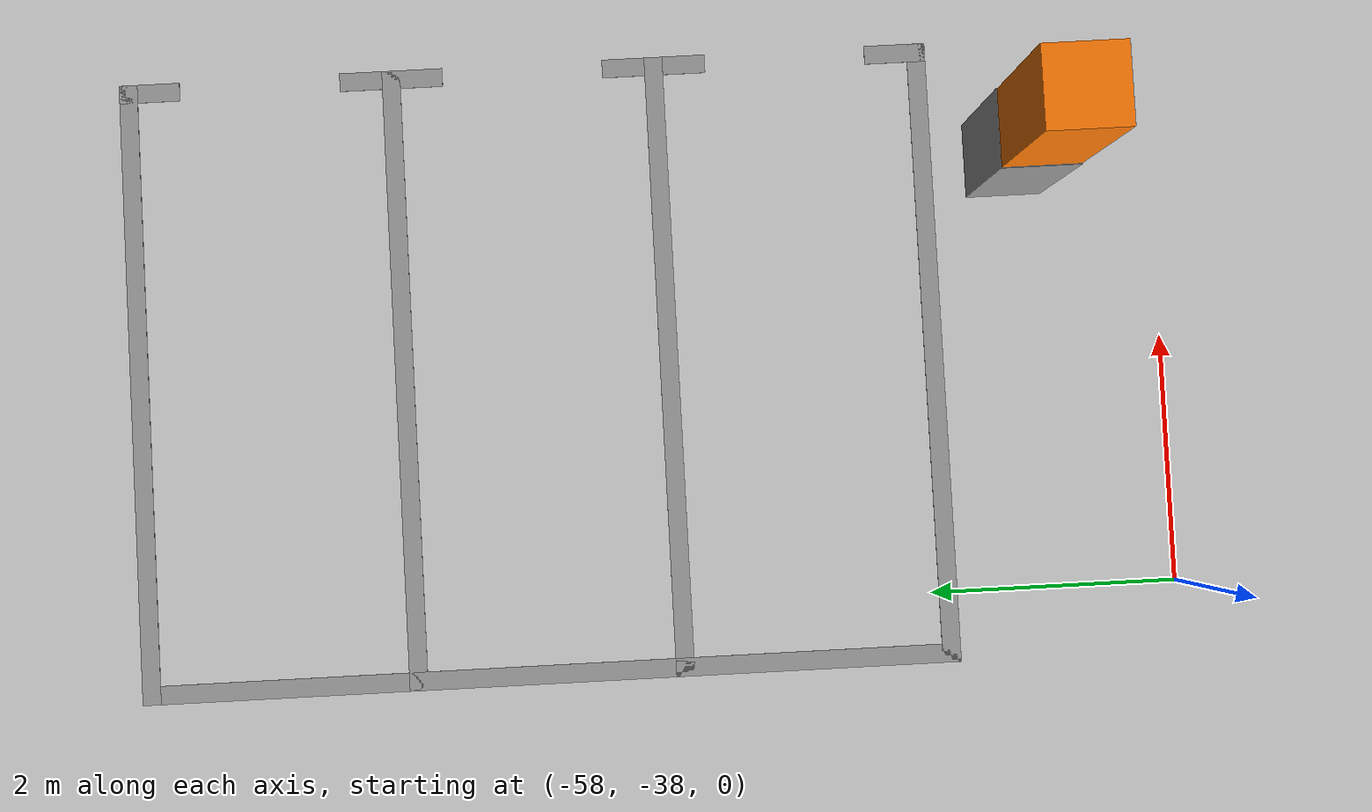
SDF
<sdf version="1.7">
 <world name="default">
  <model name="ground_plane">
   <static>1</static>
   <link name="link">
    <collision name="collision">
     <geometry><plane><normal>0 0 1</normal><size>100 100</size></plane></geometry>
     <surface><friction><ode><mu>100</mu><mu2>50</mu2></ode></friction></surface>
    </collision>
    <visual name="visual">
     <cast_shadows>0</cast_shadows>
     <geometry><plane><normal>0 0 1</normal><size>100 100</size></plane></geometry>
     <material>
      <script><uri>file://media/materials/scripts/gazebo.material</uri><name>Gazebo/Grey</name></script>
     </material>
    </visual>
   </link>
  </model>
  <model name="carport1_3_clone_clone_9_clone_0_clone_2">
   <pose>-57.7606 -33.3171 0 0 -0 1.57184</pose>
   <link name="Wall_105">
    <collision name="Wall_105_Collision">
     <geometry><box><size>0.61 0.6 1.5</size></box></geometry>
     <pose>0 0 0.75 0 -0 0</pose>
    </collision>
    <visual name="Wall_105_Visual">
     <pose>0 0 0.75 0 -0 0</pose>
     <geometry><box><size>0.61 0.6 1.5</size></box></geometry>
     <material>
      <script><uri>file://media/materials/scripts/gazebo.material</uri><name>Gazebo/Grey</name></script>
      <ambient>1 1 1 1</ambient>
     </material>
     <meta><layer>0</layer></meta>
    </visual>
    <pose>-3.47407 -3.2865 0 0 -0 0</pose>
   </link>
   <link name="Wall_116">
    <collision name="Wall_116_Collision">
     <geometry><box><size>5.1 0.15 0.005</size></box></geometry>
     <pose>0 0 0.0025 0 -0 0</pose>
    </collision>
    <visual name="Wall_116_Visual">
     <pose>0 0 0.0025 0 -0 0</pose>
     <geometry><box><size>5.1 0.15 0.005</size></box></geometry>
     <material>
      <script><uri>file://media/materials/scripts/gazebo.material</uri><name>Gazebo/Grey</name></script>
      <ambient>1 1 1 1</ambient>
     </material>
     <meta><layer>0</layer></meta>
    </visual>
    <pose>-2.82307 -1.7385 0 0 -0 1.5708</pose>
   </link>
   <link name="Wall_124">
    <collision name="Wall_124_Collision">
     <geometry><box><size>5.1 0.15 0.005</size></box></geometry>
     <pose>0 0 0.0025 0 -0 0</pose>
    </collision>
    <visual name="Wall_124_Visual">
     <pose>0 0 0.0025 0 -0 0</pose>
     <geometry><box><size>5.1 0.15 0.005</size></box></geometry>
     <material>
      <script><uri>file://media/materials/scripts/gazebo.material</uri><name>Gazebo/Grey</name></script>
      <ambient>1 1 1 1</ambient>
     </material>
     <meta><layer>0</layer></meta>
    </visual>
    <pose>3.70393 -1.7305 0 0 -0 1.5708</pose>
   </link>
   <link name="Wall_146">
    <collision name="Wall_146_Collision">
     <geometry><box><size>6.67711 0.15 0.005</size></box></geometry>
     <pose>0 0 0.0025 0 -0 0</pose>
    </collision>
    <visual name="Wall_146_Visual">
     <pose>0 0 0.0025 0 -0 0</pose>
     <geometry><box><size>6.67711 0.15 0.005</size></box></geometry>
     <material>
      <script><uri>file://media/materials/scripts/gazebo.material</uri><name>Gazebo/Grey</name></script>
      <ambient>1 1 1 1</ambient>
     </material>
     <meta><layer>0</layer></meta>
    </visual>
    <pose>0.440428 0.7405 0 0 -0 0.001226</pose>
   </link>
   <link name="Wall_168">
    <collision name="Wall_168_Collision">
     <geometry><box><size>5.1 0.15 0.005</size></box></geometry>
     <pose>0 0 0.0025 0 -0 0</pose>
    </collision>
    <visual name="Wall_168_Visual">
     <pose>0 0 0.0025 0 -0 0</pose>
     <geometry><box><size>5.1 0.15 0.005</size></box></geometry>
     <material>
      <script><uri>file://media/materials/scripts/gazebo.material</uri><name>Gazebo/Grey</name></script>
      <ambient>1 1 1 1</ambient>
     </material>
     <meta><layer>0</layer></meta>
    </visual>
    <pose>-0.64827 -1.73839 0 0 -0 1.57088</pose>
   </link>
   <link name="Wall_173">
    <collision name="Wall_173_Collision">
     <geometry><box><size>5.1 0.15 0.005</size></box></geometry>
     <pose>0 0 0.0025 0 -0 0</pose>
    </collision>
    <visual name="Wall_173_Visual">
     <pose>0 0 0.0025 0 -0 0</pose>
     <geometry><box><size>5.1 0.15 0.005</size></box></geometry>
     <material>
      <script><uri>file://media/materials/scripts/gazebo.material</uri><name>Gazebo/Grey</name></script>
      <ambient>1 1 1 1</ambient>
     </material>
     <meta><layer>0</layer></meta>
    </visual>
    <pose>1.52673 -1.73839 0 0 -0 1.57088</pose>
   </link>
   <link name="Wall_177">
    <collision name="Wall_177_Collision">
     <geometry><box><size>0.6 0.59 3</size></box></geometry>
     <pose>0 0 1.5 0 -0 0</pose>
    </collision>
    <visual name="Wall_177_Visual">
     <pose>0 0 1.5 0 -0 0</pose>
     <geometry><box><size>0.6 0.59 3</size></box></geometry>
     <material>
      <script><uri>file://media/materials/scripts/gazebo.material</uri><name>Gazebo/Grey</name></script>
      <ambient>0.996078 0.47451 0.0196078 1</ambient>
     </material>
     <meta><layer>0</layer></meta>
    </visual>
    <pose>-3.47407 -3.2865 0 0 -0 0</pose>
   </link>
   <link name="Wall_179">
    <collision name="Wall_179_Collision">
     <geometry><box><size>0.5 0.15 0.005</size></box></geometry>
     <pose>0 0 0.0025 0 -0 0</pose>
    </collision>
    <visual name="Wall_179_Visual">
     <pose>0 0 0.0025 0 -0 0</pose>
     <geometry><box><size>0.5 0.15 0.005</size></box></geometry>
     <material>
      <script><uri>file://media/materials/scripts/gazebo.material</uri><name>Gazebo/Grey</name></script>
      <ambient>1 1 1 1</ambient>
     </material>
     <meta><layer>0</layer></meta>
    </visual>
    <pose>-2.64807 -4.2135 0 0 -0 0</pose>
   </link>
   <link name="Wall_181">
    <collision name="Wall_181_Collision">
     <geometry><box><size>0.5 0.15 0.005</size></box></geometry>
     <pose>0 0 0.0025 0 -0 0</pose>
    </collision>
    <visual name="Wall_181_Visual">
     <pose>0 0 0.0025 0 -0 0</pose>
     <geometry><box><size>0.5 0.15 0.005</size></box></geometry>
     <material>
      <script><uri>file://media/materials/scripts/gazebo.material</uri><name>Gazebo/Grey</name></script>
      <ambient>1 1 1 1</ambient>
     </material>
     <meta><layer>0</layer></meta>
    </visual>
    <pose>-0.823072 -4.2135 0 0 -0 3.14159</pose>
   </link>
   <link name="Wall_183">
    <collision name="Wall_183_Collision">
     <geometry><box><size>0.5 0.15 0.005</size></box></geometry>
     <pose>0 0 0.0025 0 -0 0</pose>
    </collision>
    <visual name="Wall_183_Visual">
     <pose>0 0 0.0025 0 -0 0</pose>
     <geometry><box><size>0.5 0.15 0.005</size></box></geometry>
     <material>
      <script><uri>file://media/materials/scripts/gazebo.material</uri><name>Gazebo/Grey</name></script>
      <ambient>1 1 1 1</ambient>
     </material>
     <meta><layer>0</layer></meta>
    </visual>
    <pose>-0.473072 -4.2135 0 0 -0 0</pose>
   </link>
   <link name="Wall_185">
    <collision name="Wall_185_Collision">
     <geometry><box><size>0.5 0.15 0.005</size></box></geometry>
     <pose>0 0 0.0025 0 -0 0</pose>
    </collision>
    <visual name="Wall_185_Visual">
     <pose>0 0 0.0025 0 -0 0</pose>
     <geometry><box><size>0.5 0.15 0.005</size></box></geometry>
     <material>
      <script><uri>file://media/materials/scripts/gazebo.material</uri><name>Gazebo/Grey</name></script>
      <ambient>1 1 1 1</ambient>
     </material>
     <meta><layer>0</layer></meta>
    </visual>
    <pose>1.35193 -4.2135 0 0 -0 3.14159</pose>
   </link>
   <link name="Wall_187">
    <collision name="Wall_187_Collision">
     <geometry><box><size>0.5 0.15 0.005</size></box></geometry>
     <pose>0 0 0.0025 0 -0 0</pose>
    </collision>
    <visual name="Wall_187_Visual">
     <pose>0 0 0.0025 0 -0 0</pose>
     <geometry><box><size>0.5 0.15 0.005</size></box></geometry>
     <material>
      <script><uri>file://media/materials/scripts/gazebo.material</uri><name>Gazebo/Grey</name></script>
      <ambient>1 1 1 1</ambient>
     </material>
     <meta><layer>0</layer></meta>
    </visual>
    <pose>1.70193 -4.2135 0 0 -0 0</pose>
   </link>
   <link name="Wall_189">
    <collision name="Wall_189_Collision">
     <geometry><box><size>0.5 0.15 0.005</size></box></geometry>
     <pose>0 0 0.0025 0 -0 0</pose>
    </collision>
    <visual name="Wall_189_Visual">
     <pose>0 0 0.0025 0 -0 0</pose>
     <geometry><box><size>0.5 0.15 0.005</size></box></geometry>
     <material>
      <script><uri>file://media/materials/scripts/gazebo.material</uri><name>Gazebo/Grey</name></script>
      <ambient>1 1 1 1</ambient>
     </material>
     <meta><layer>0</layer></meta>
    </visual>
    <pose>3.52893 -4.2055 0 0 -0 3.14159</pose>
   </link>
   <static>1</static>
  </model>
 </world>
</sdf>
